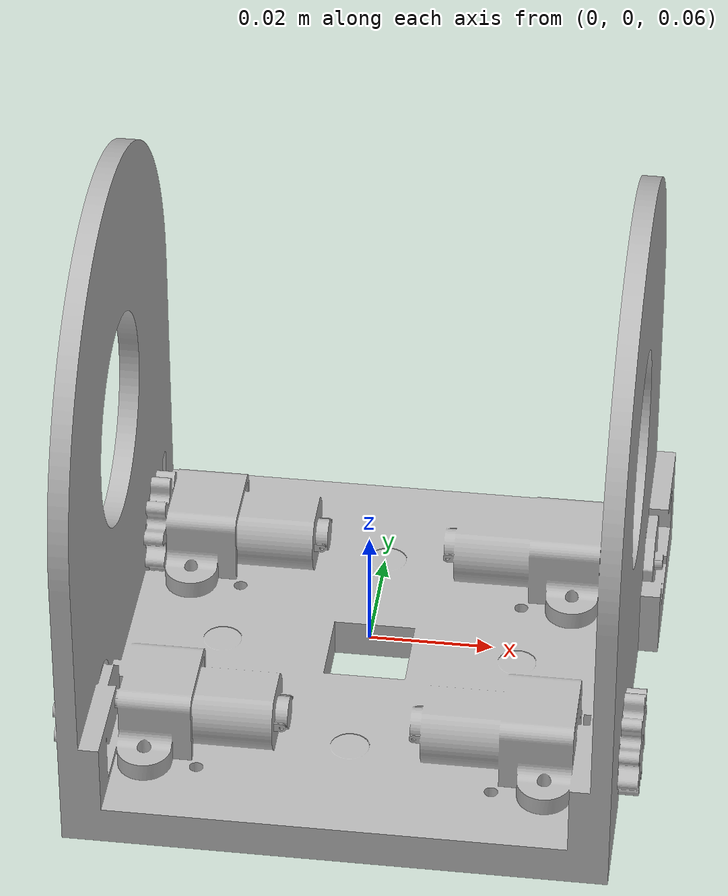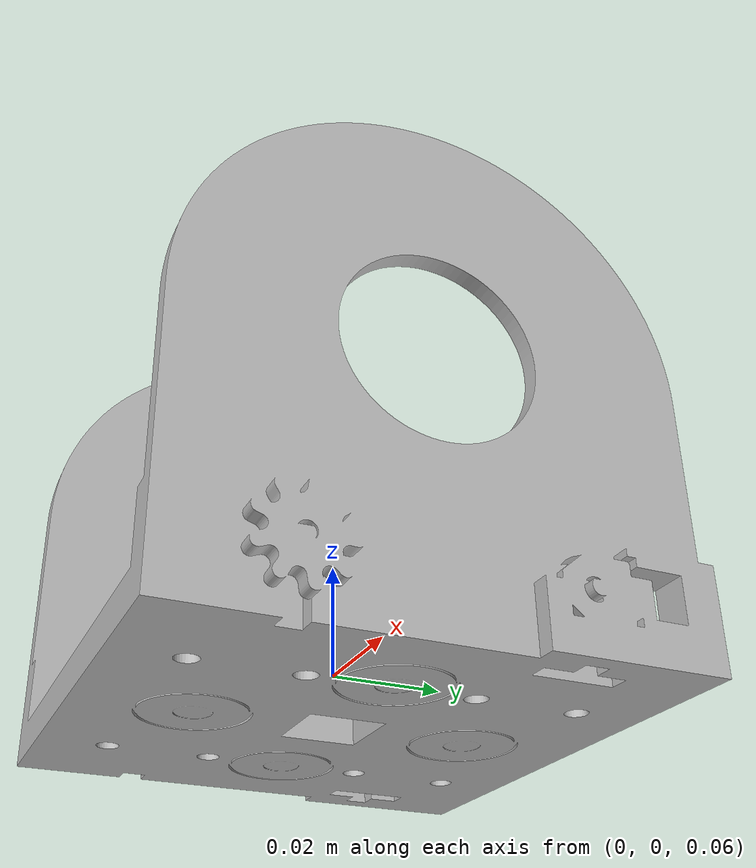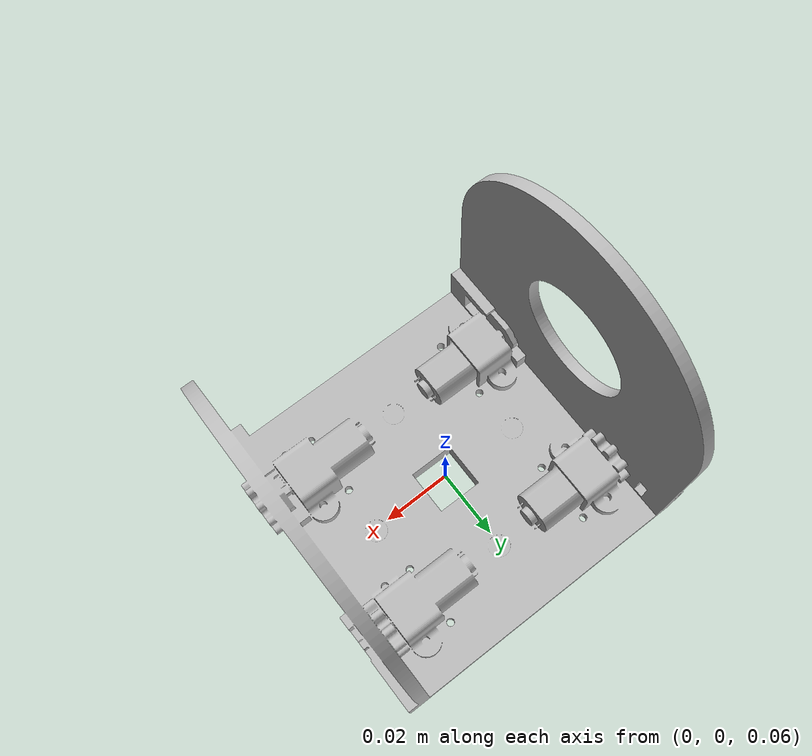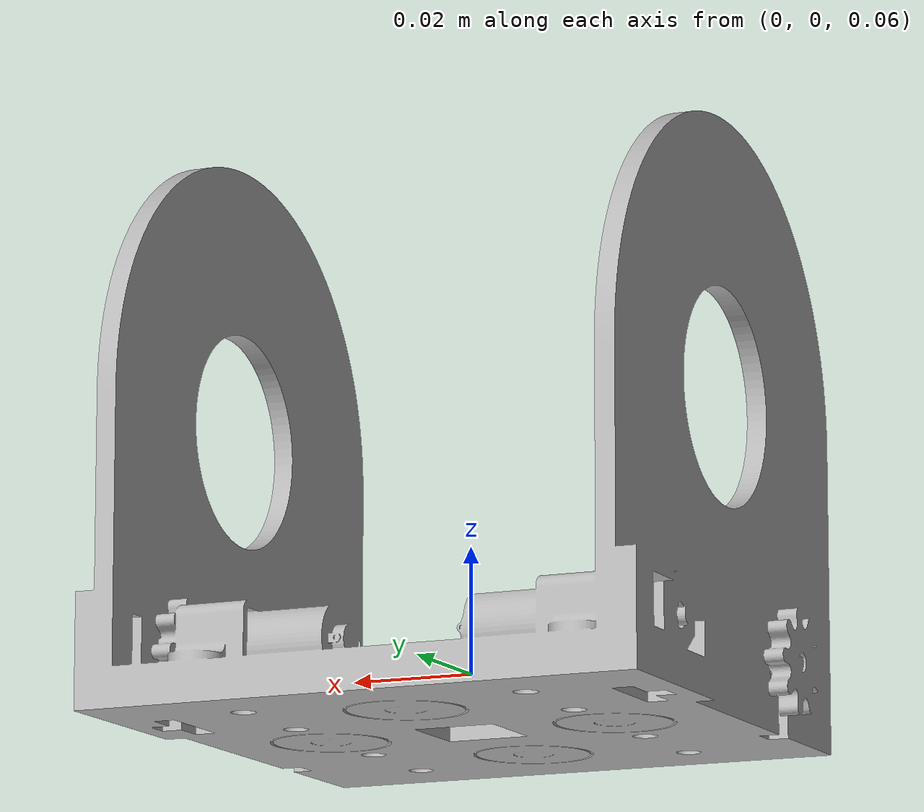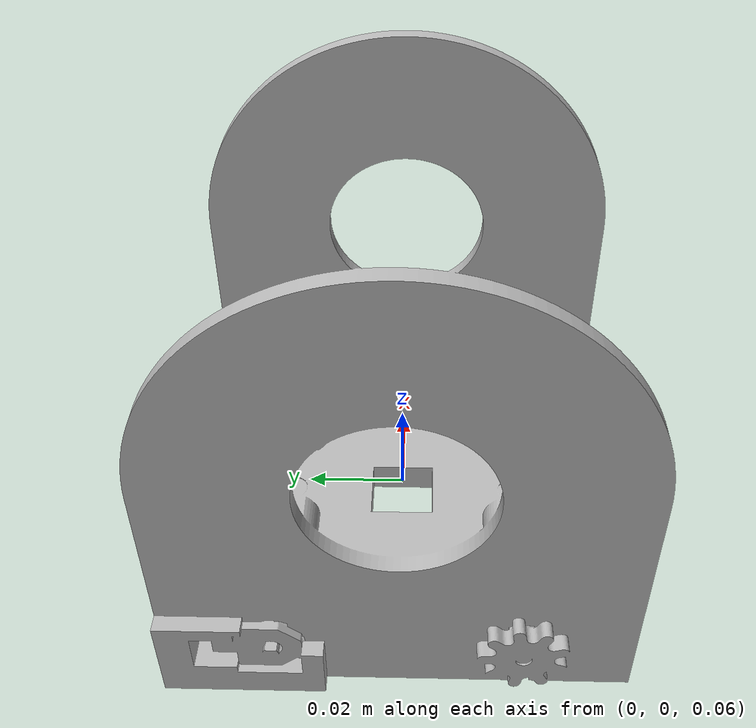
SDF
<?xml version='1.0'?>
<sdf version='1.4'>
  <model name="prototype_2">
  <static>true</static>

  <link name='Holder'>
        <pose>0 0 .1 0 0 0</pose>

        <collision name='bottom_collision'>
          <geometry>
            <box>
              <size>.091698 .087898 .0064</size>
            </box>
          </geometry>
        </collision>

      <collision name='LeftSide_collision'>
      	<pose> 0.042649 0 .0213745 0 0 0</pose>
          <geometry>
            <box>
              <size>.0064 .087898 .042749</size>
            </box>
          </geometry>
      </collision>

       <collision name='RightSide_collision'>
      	<pose> -0.042649 0 .0213745 0 0 0</pose>
          <geometry>
            <box>
              <size>.0064 .087898 .042749</size>
            </box>
          </geometry>
      </collision>

 			<collision name='LeftSideTop_collision'>
      	<pose> 0.042649 0 .042749 1.5707 0 1.5707</pose>
          <geometry>
            <cylinder>
          		<radius>.043949</radius>
          		<length>.0064</length>
        		</cylinder>
          </geometry>
      </collision>

			<collision name='RightSideTop_collision'>
      	<pose> -0.042649 0 .042749 1.5707 0 1.5707</pose>
          <geometry>
            <cylinder>
          		<radius>.043949</radius>
          		<length>.0064</length>
        		</cylinder>
          </geometry>
      </collision>

      <visual name='4all'>
          <geometry>
            <mesh>
							<uri>model://Prototype2/mesh/ch_o Asm.dae</uri>
							<scale>0.001 0.001 0.001</scale>
						</mesh>
          </geometry>
       </visual>

		</link>
  </model>
</sdf>
